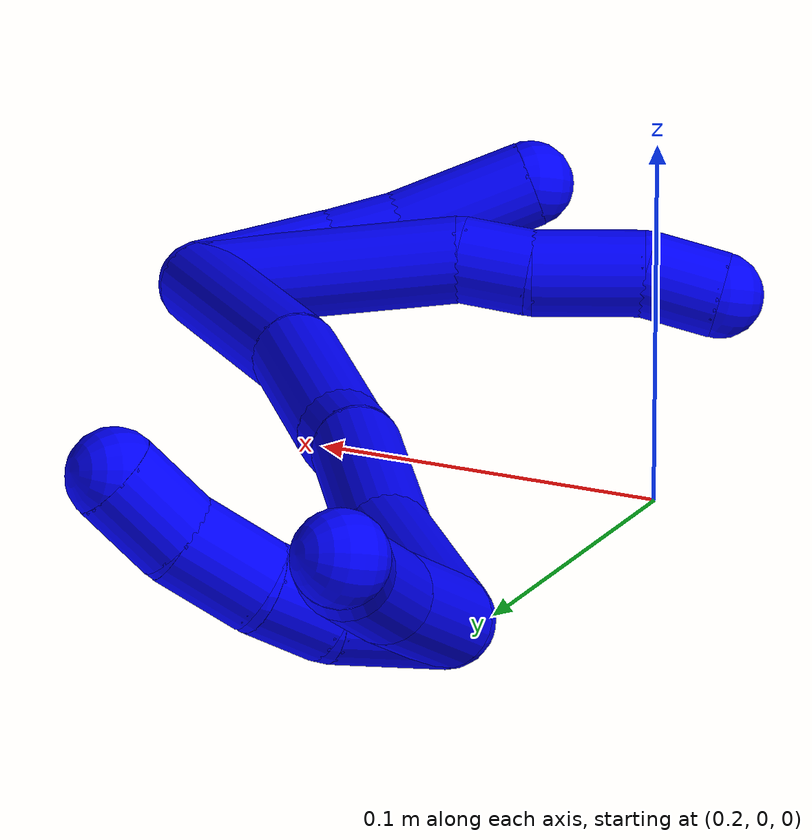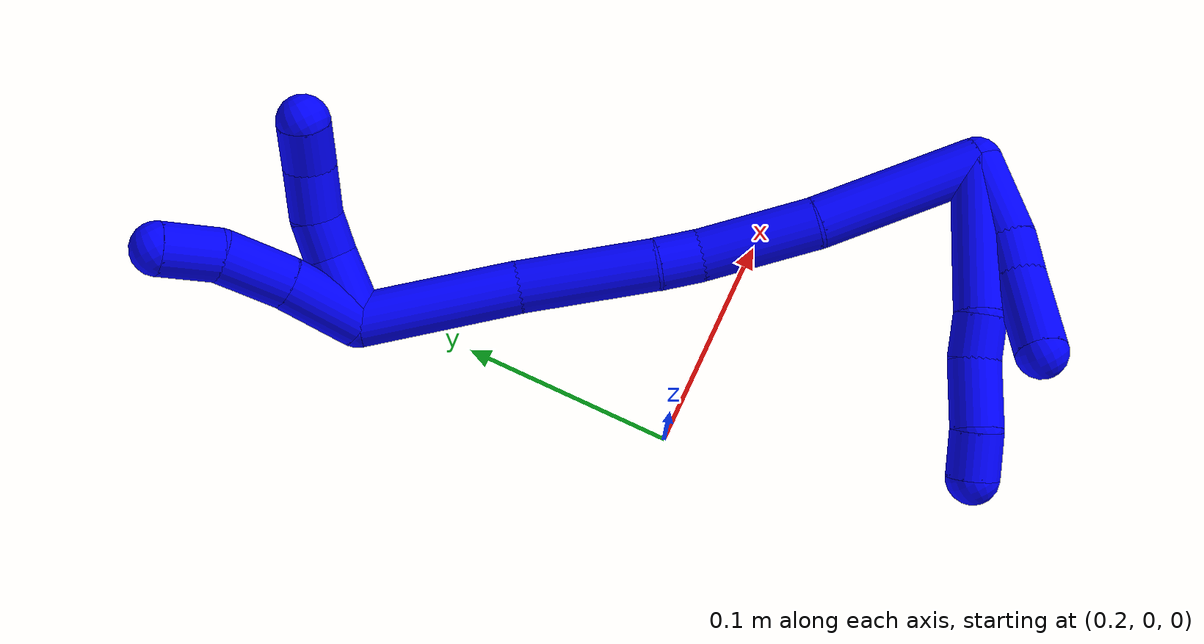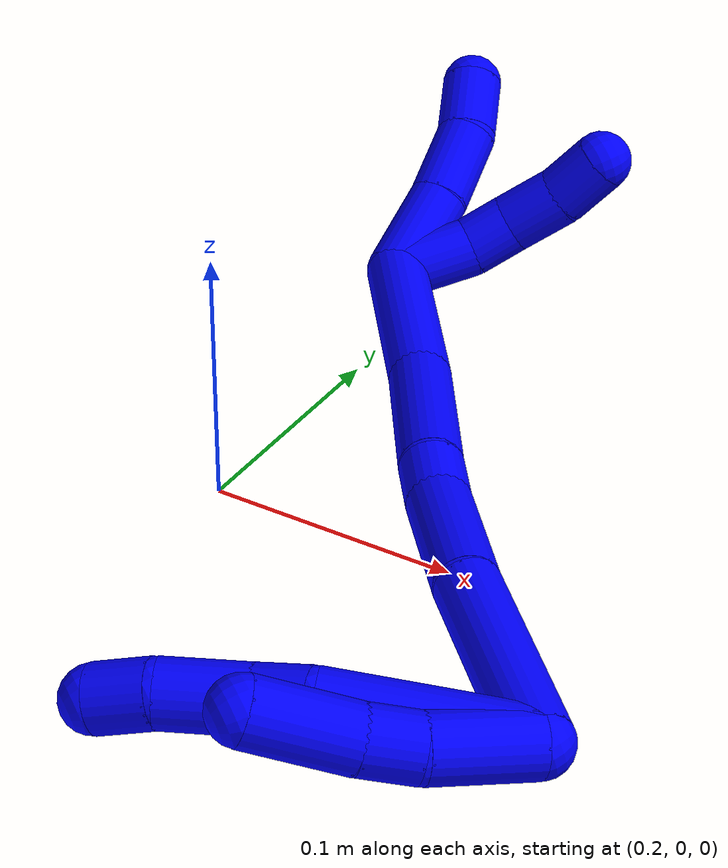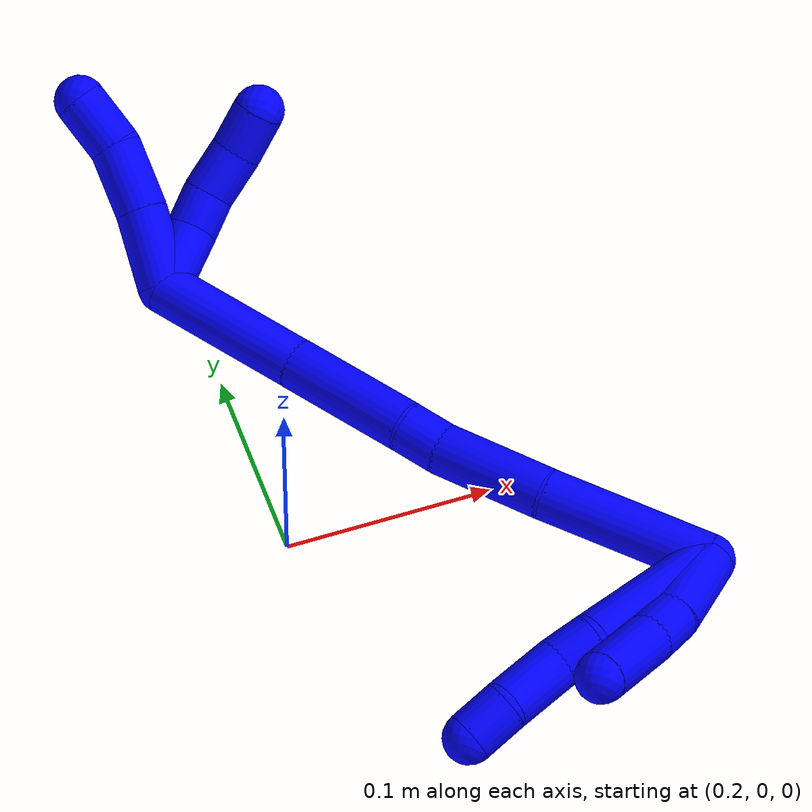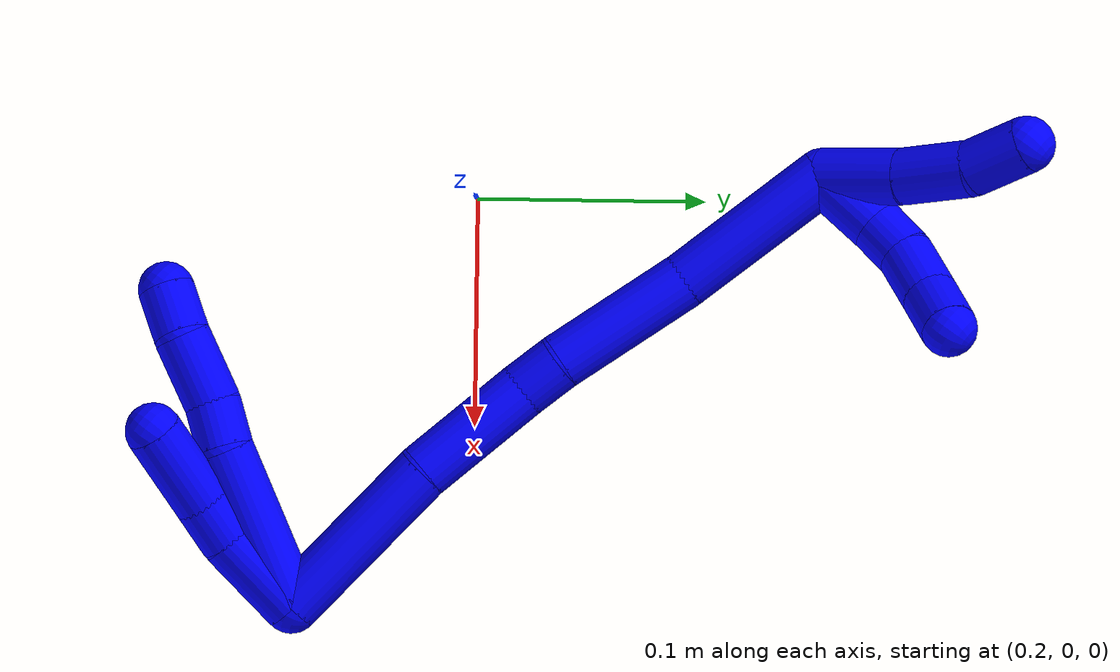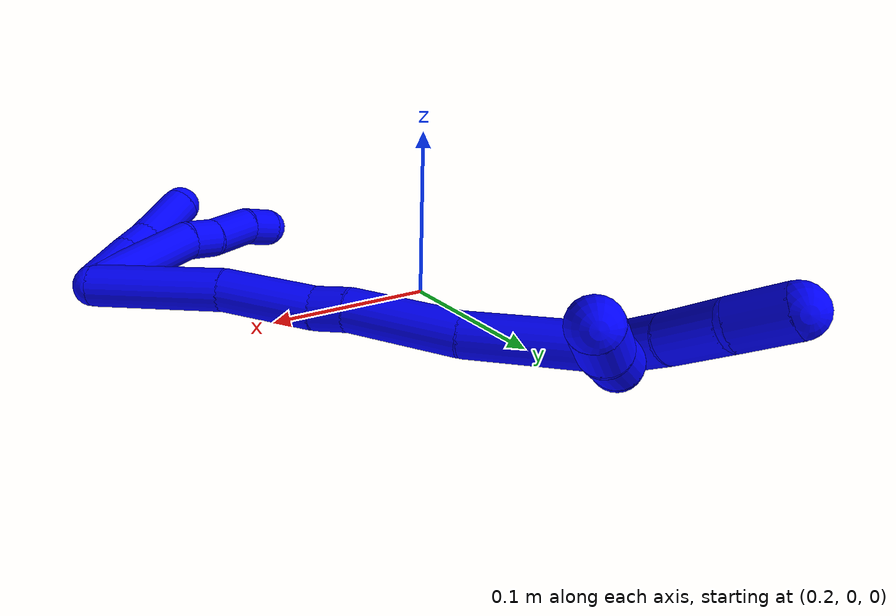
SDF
<sdf version="1.7">
 <world name="default">
  <model name="1">
   <static>0</static>
   <link name="1">
    <collision name="collision-cylinder-e_1_2_8">
     <pose>-0.010073 0.019786 -0.029981 -2.55824 -0.273391 0.859212</pose>
     <geometry><cylinder><radius>0.0125</radius><length>0.074614</length></cylinder></geometry>
     <surface>
      <friction><ode><mu>1.16</mu><mu2>1.16</mu2><slip1>0</slip1><slip2>0</slip2></ode></friction>
      <contact><ode><kp>1e+06</kp><kd>1</kd><max_vel>0</max_vel><min_depth>0.001</min_depth></ode></contact>
     </surface>
    </collision>
    <visual name="visual-cylinder-e_1_2_8">
     <pose>-0.010073 0.019786 -0.029981 -2.55824 -0.273391 0.859212</pose>
     <geometry><cylinder><radius>0.0125</radius><length>0.074614</length></cylinder></geometry>
     <material><ambient>0 0 1 1</ambient></material>
    </visual>
    <collision name="collision-cylinder-e_2_8_9">
     <pose>-0.020118 0.045854 -0.068234 -2.49218 0.002673 -0.00794</pose>
     <geometry><cylinder><radius>0.0125</radius><length>0.020774</length></cylinder></geometry>
     <surface>
      <friction><ode><mu>1.16</mu><mu2>1.16</mu2><slip1>0</slip1><slip2>0</slip2></ode></friction>
      <contact><ode><kp>1e+06</kp><kd>1</kd><max_vel>0</max_vel><min_depth>0.001</min_depth></ode></contact>
     </surface>
    </collision>
    <visual name="visual-cylinder-e_2_8_9">
     <pose>-0.020118 0.045854 -0.068234 -2.49218 0.002673 -0.00794</pose>
     <geometry><cylinder><radius>0.0125</radius><length>0.020774</length></cylinder></geometry>
     <material><ambient>0 0 1 1</ambient></material>
    </visual>
    <collision name="collision-cylinder-e_3_9_10">
     <pose>-0.022739 0.060161 -0.090298 -2.61457 -0.164509 0.593134</pose>
     <geometry><cylinder><radius>0.0125</radius><length>0.032351</length></cylinder></geometry>
     <surface>
      <friction><ode><mu>1.16</mu><mu2>1.16</mu2><slip1>0</slip1><slip2>0</slip2></ode></friction>
      <contact><ode><kp>1e+06</kp><kd>1</kd><max_vel>0</max_vel><min_depth>0.001</min_depth></ode></contact>
     </surface>
    </collision>
    <visual name="visual-cylinder-e_3_9_10">
     <pose>-0.022739 0.060161 -0.090298 -2.61457 -0.164509 0.593134</pose>
     <geometry><cylinder><radius>0.0125</radius><length>0.032351</length></cylinder></geometry>
     <material><ambient>0 0 1 1</ambient></material>
    </visual>
    <collision name="collision-cylinder-e_4_10_6">
     <pose>-0.02421 0.074092 -0.113451 -2.57877 0.10604 -0.363119</pose>
     <geometry><cylinder><radius>0.0125</radius><length>0.022262</length></cylinder></geometry>
     <surface>
      <friction><ode><mu>1.16</mu><mu2>1.16</mu2><slip1>0</slip1><slip2>0</slip2></ode></friction>
      <contact><ode><kp>1e+06</kp><kd>1</kd><max_vel>0</max_vel><min_depth>0.001</min_depth></ode></contact>
     </surface>
    </collision>
    <visual name="visual-cylinder-e_4_10_6">
     <pose>-0.02421 0.074092 -0.113451 -2.57877 0.10604 -0.363119</pose>
     <geometry><cylinder><radius>0.0125</radius><length>0.022262</length></cylinder></geometry>
     <material><ambient>0 0 1 1</ambient></material>
    </visual>
    <collision name="collision-cylinder-e_1_2_11">
     <pose>-0.00692 0.003866 -0.018296 -2.93335 -0.354446 2.08524</pose>
     <geometry><cylinder><radius>0.0125</radius><length>0.039878</length></cylinder></geometry>
     <surface>
      <friction><ode><mu>1.16</mu><mu2>1.16</mu2><slip1>0</slip1><slip2>0</slip2></ode></friction>
      <contact><ode><kp>1e+06</kp><kd>1</kd><max_vel>0</max_vel><min_depth>0.001</min_depth></ode></contact>
     </surface>
    </collision>
    <visual name="visual-cylinder-e_1_2_11">
     <pose>-0.00692 0.003866 -0.018296 -2.93335 -0.354446 2.08524</pose>
     <geometry><cylinder><radius>0.0125</radius><length>0.039878</length></cylinder></geometry>
     <material><ambient>0 0 1 1</ambient></material>
    </visual>
    <collision name="collision-cylinder-e_2_11_12">
     <pose>-0.018074 0.011462 -0.045232 -2.73412 -0.422677 1.60849</pose>
     <geometry><cylinder><radius>0.0125</radius><length>0.02064</length></cylinder></geometry>
     <surface>
      <friction><ode><mu>1.16</mu><mu2>1.16</mu2><slip1>0</slip1><slip2>0</slip2></ode></friction>
      <contact><ode><kp>1e+06</kp><kd>1</kd><max_vel>0</max_vel><min_depth>0.001</min_depth></ode></contact>
     </surface>
    </collision>
    <visual name="visual-cylinder-e_2_11_12">
     <pose>-0.018074 0.011462 -0.045232 -2.73412 -0.422677 1.60849</pose>
     <geometry><cylinder><radius>0.0125</radius><length>0.02064</length></cylinder></geometry>
     <material><ambient>0 0 1 1</ambient></material>
    </visual>
    <collision name="collision-cylinder-e_3_12_5">
     <pose>-0.032364 0.022336 -0.069285 -2.70748 -0.534554 1.7856</pose>
     <geometry><cylinder><radius>0.0125</radius><length>0.039482</length></cylinder></geometry>
     <surface>
      <friction><ode><mu>1.16</mu><mu2>1.16</mu2><slip1>0</slip1><slip2>0</slip2></ode></friction>
      <contact><ode><kp>1e+06</kp><kd>1</kd><max_vel>0</max_vel><min_depth>0.001</min_depth></ode></contact>
     </surface>
    </collision>
    <visual name="visual-cylinder-e_3_12_5">
     <pose>-0.032364 0.022336 -0.069285 -2.70748 -0.534554 1.7856</pose>
     <geometry><cylinder><radius>0.0125</radius><length>0.039482</length></cylinder></geometry>
     <material><ambient>0 0 1 1</ambient></material>
    </visual>
    <collision name="collision-cylinder-e_1_2_13">
     <pose>0.002417 0.040566 0.005952 -1.42512 0.05889 -0.050884</pose>
     <geometry><cylinder><radius>0.0125</radius><length>0.082144</length></cylinder></geometry>
     <surface>
      <friction><ode><mu>1.16</mu><mu2>1.16</mu2><slip1>0</slip1><slip2>0</slip2></ode></friction>
      <contact><ode><kp>1e+06</kp><kd>1</kd><max_vel>0</max_vel><min_depth>0.001</min_depth></ode></contact>
     </surface>
    </collision>
    <visual name="visual-cylinder-e_1_2_13">
     <pose>0.002417 0.040566 0.005952 -1.42512 0.05889 -0.050884</pose>
     <geometry><cylinder><radius>0.0125</radius><length>0.082144</length></cylinder></geometry>
     <material><ambient>0 0 1 1</ambient></material>
    </visual>
    <collision name="collision-cylinder-e_2_13_14">
     <pose>0.010316 0.108002 0.018123 -1.34334 0.1962 -0.156159</pose>
     <geometry><cylinder><radius>0.0125</radius><length>0.056239</length></cylinder></geometry>
     <surface>
      <friction><ode><mu>1.16</mu><mu2>1.16</mu2><slip1>0</slip1><slip2>0</slip2></ode></friction>
      <contact><ode><kp>1e+06</kp><kd>1</kd><max_vel>0</max_vel><min_depth>0.001</min_depth></ode></contact>
     </surface>
    </collision>
    <visual name="visual-cylinder-e_2_13_14">
     <pose>0.010316 0.108002 0.018123 -1.34334 0.1962 -0.156159</pose>
     <geometry><cylinder><radius>0.0125</radius><length>0.056239</length></cylinder></geometry>
     <material><ambient>0 0 1 1</ambient></material>
    </visual>
    <collision name="collision-cylinder-e_3_14_15">
     <pose>0.016151 0.144793 0.027392 -1.27255 0.033953 -0.025084</pose>
     <geometry><cylinder><radius>0.0125</radius><length>0.02077</length></cylinder></geometry>
     <surface>
      <friction><ode><mu>1.16</mu><mu2>1.16</mu2><slip1>0</slip1><slip2>0</slip2></ode></friction>
      <contact><ode><kp>1e+06</kp><kd>1</kd><max_vel>0</max_vel><min_depth>0.001</min_depth></ode></contact>
     </surface>
    </collision>
    <visual name="visual-cylinder-e_3_14_15">
     <pose>0.016151 0.144793 0.027392 -1.27255 0.033953 -0.025084</pose>
     <geometry><cylinder><radius>0.0125</radius><length>0.02077</length></cylinder></geometry>
     <material><ambient>0 0 1 1</ambient></material>
    </visual>
    <collision name="collision-cylinder-e_4_15_16">
     <pose>0.022626 0.184789 0.040998 -1.23323 0.189773 -0.134714</pose>
     <geometry><cylinder><radius>0.0125</radius><length>0.064912</length></cylinder></geometry>
     <surface>
      <friction><ode><mu>1.16</mu><mu2>1.16</mu2><slip1>0</slip1><slip2>0</slip2></ode></friction>
      <contact><ode><kp>1e+06</kp><kd>1</kd><max_vel>0</max_vel><min_depth>0.001</min_depth></ode></contact>
     </surface>
    </collision>
    <visual name="visual-cylinder-e_4_15_16">
     <pose>0.022626 0.184789 0.040998 -1.23323 0.189773 -0.134714</pose>
     <geometry><cylinder><radius>0.0125</radius><length>0.064912</length></cylinder></geometry>
     <material><ambient>0 0 1 1</ambient></material>
    </visual>
    <collision name="collision-cylinder-e_5_16_1">
     <pose>0.031528 0.251099 0.062543 -1.27633 0.073289 -0.054369</pose>
     <geometry><cylinder><radius>0.0125</radius><length>0.075935</length></cylinder></geometry>
     <surface>
      <friction><ode><mu>1.16</mu><mu2>1.16</mu2><slip1>0</slip1><slip2>0</slip2></ode></friction>
      <contact><ode><kp>1e+06</kp><kd>1</kd><max_vel>0</max_vel><min_depth>0.001</min_depth></ode></contact>
     </surface>
    </collision>
    <visual name="visual-cylinder-e_5_16_1">
     <pose>0.031528 0.251099 0.062543 -1.27633 0.073289 -0.054369</pose>
     <geometry><cylinder><radius>0.0125</radius><length>0.075935</length></cylinder></geometry>
     <material><ambient>0 0 1 1</ambient></material>
    </visual>
    <collision name="collision-cylinder-e_1_1_17">
     <pose>0.02956 0.297584 0.089021 -0.58458 -0.250309 0.07568</pose>
     <geometry><cylinder><radius>0.0125</radius><length>0.038339</length></cylinder></geometry>
     <surface>
      <friction><ode><mu>1.16</mu><mu2>1.16</mu2><slip1>0</slip1><slip2>0</slip2></ode></friction>
      <contact><ode><kp>1e+06</kp><kd>1</kd><max_vel>0</max_vel><min_depth>0.001</min_depth></ode></contact>
     </surface>
    </collision>
    <visual name="visual-cylinder-e_1_1_17">
     <pose>0.02956 0.297584 0.089021 -0.58458 -0.250309 0.07568</pose>
     <geometry><cylinder><radius>0.0125</radius><length>0.038339</length></cylinder></geometry>
     <material><ambient>0 0 1 1</ambient></material>
    </visual>
    <collision name="collision-cylinder-e_2_17_18">
     <pose>0.02007 0.318172 0.11695 -0.693408 -0.285091 0.103613</pose>
     <geometry><cylinder><radius>0.0125</radius><length>0.033715</length></cylinder></geometry>
     <surface>
      <friction><ode><mu>1.16</mu><mu2>1.16</mu2><slip1>0</slip1><slip2>0</slip2></ode></friction>
      <contact><ode><kp>1e+06</kp><kd>1</kd><max_vel>0</max_vel><min_depth>0.001</min_depth></ode></contact>
     </surface>
    </collision>
    <visual name="visual-cylinder-e_2_17_18">
     <pose>0.02007 0.318172 0.11695 -0.693408 -0.285091 0.103613</pose>
     <geometry><cylinder><radius>0.0125</radius><length>0.033715</length></cylinder></geometry>
     <material><ambient>0 0 1 1</ambient></material>
    </visual>
    <collision name="collision-cylinder-e_3_18_4">
     <pose>0.011595 0.339671 0.136926 -0.976913 -0.270517 0.144386</pose>
     <geometry><cylinder><radius>0.0125</radius><length>0.027946</length></cylinder></geometry>
     <surface>
      <friction><ode><mu>1.16</mu><mu2>1.16</mu2><slip1>0</slip1><slip2>0</slip2></ode></friction>
      <contact><ode><kp>1e+06</kp><kd>1</kd><max_vel>0</max_vel><min_depth>0.001</min_depth></ode></contact>
     </surface>
    </collision>
    <visual name="visual-cylinder-e_3_18_4">
     <pose>0.011595 0.339671 0.136926 -0.976913 -0.270517 0.144386</pose>
     <geometry><cylinder><radius>0.0125</radius><length>0.027946</length></cylinder></geometry>
     <material><ambient>0 0 1 1</ambient></material>
    </visual>
    <collision name="collision-cylinder-e_1_1_19">
     <pose>0.034986 0.285618 0.089674 0.105976 0.041715 0.002213</pose>
     <geometry><cylinder><radius>0.0125</radius><length>0.032492</length></cylinder></geometry>
     <surface>
      <friction><ode><mu>1.16</mu><mu2>1.16</mu2><slip1>0</slip1><slip2>0</slip2></ode></friction>
      <contact><ode><kp>1e+06</kp><kd>1</kd><max_vel>0</max_vel><min_depth>0.001</min_depth></ode></contact>
     </surface>
    </collision>
    <visual name="visual-cylinder-e_1_1_19">
     <pose>0.034986 0.285618 0.089674 0.105976 0.041715 0.002213</pose>
     <geometry><cylinder><radius>0.0125</radius><length>0.032492</length></cylinder></geometry>
     <material><ambient>0 0 1 1</ambient></material>
    </visual>
    <collision name="collision-cylinder-e_2_19_20">
     <pose>0.032965 0.282478 0.11534 0.148248 -0.273196 -0.020414</pose>
     <geometry><cylinder><radius>0.0125</radius><length>0.020003</length></cylinder></geometry>
     <surface>
      <friction><ode><mu>1.16</mu><mu2>1.16</mu2><slip1>0</slip1><slip2>0</slip2></ode></friction>
      <contact><ode><kp>1e+06</kp><kd>1</kd><max_vel>0</max_vel><min_depth>0.001</min_depth></ode></contact>
     </surface>
    </collision>
    <visual name="visual-cylinder-e_2_19_20">
     <pose>0.032965 0.282478 0.11534 0.148248 -0.273196 -0.020414</pose>
     <geometry><cylinder><radius>0.0125</radius><length>0.020003</length></cylinder></geometry>
     <material><ambient>0 0 1 1</ambient></material>
    </visual>
    <collision name="collision-cylinder-e_3_20_21">
     <pose>0.025471 0.277171 0.135543 0.348934 -0.399321 -0.071304</pose>
     <geometry><cylinder><radius>0.0125</radius><length>0.024666</length></cylinder></geometry>
     <surface>
      <friction><ode><mu>1.16</mu><mu2>1.16</mu2><slip1>0</slip1><slip2>0</slip2></ode></friction>
      <contact><ode><kp>1e+06</kp><kd>1</kd><max_vel>0</max_vel><min_depth>0.001</min_depth></ode></contact>
     </surface>
    </collision>
    <visual name="visual-cylinder-e_3_20_21">
     <pose>0.025471 0.277171 0.135543 0.348934 -0.399321 -0.071304</pose>
     <geometry><cylinder><radius>0.0125</radius><length>0.024666</length></cylinder></geometry>
     <material><ambient>0 0 1 1</ambient></material>
    </visual>
    <collision name="collision-cylinder-e_4_21_3">
     <pose>0.014107 0.270295 0.15507 0.325977 -0.61287 -0.103969</pose>
     <geometry><cylinder><radius>0.0125</radius><length>0.022839</length></cylinder></geometry>
     <surface>
      <friction><ode><mu>1.16</mu><mu2>1.16</mu2><slip1>0</slip1><slip2>0</slip2></ode></friction>
      <contact><ode><kp>1e+06</kp><kd>1</kd><max_vel>0</max_vel><min_depth>0.001</min_depth></ode></contact>
     </surface>
    </collision>
    <visual name="visual-cylinder-e_4_21_3">
     <pose>0.014107 0.270295 0.15507 0.325977 -0.61287 -0.103969</pose>
     <geometry><cylinder><radius>0.0125</radius><length>0.022839</length></cylinder></geometry>
     <material><ambient>0 0 1 1</ambient></material>
    </visual>
    <collision name="collision-sphere-3">
     <pose>0.007539 0.267303 0.163919 0 -0 0</pose>
     <geometry><sphere><radius>0.0125</radius></sphere></geometry>
     <surface>
      <friction><ode><mu>1.16</mu><mu2>1.16</mu2><slip1>0</slip1><slip2>0</slip2></ode></friction>
      <contact><ode><kp>1e+06</kp><kd>1</kd><max_vel>0</max_vel><min_depth>0.001</min_depth></ode></contact>
     </surface>
    </collision>
    <visual name="visual-sphere-3">
     <pose>0.007539 0.267303 0.163919 0 -0 0</pose>
     <geometry><sphere><radius>0.0125</radius></sphere></geometry>
     <material><ambient>0 0 1 1</ambient></material>
    </visual>
    <collision name="collision-sphere-21">
     <pose>0.020676 0.273286 0.146221 0 -0 0</pose>
     <geometry><sphere><radius>0.0125</radius></sphere></geometry>
     <surface>
      <friction><ode><mu>1.16</mu><mu2>1.16</mu2><slip1>0</slip1><slip2>0</slip2></ode></friction>
      <contact><ode><kp>1e+06</kp><kd>1</kd><max_vel>0</max_vel><min_depth>0.001</min_depth></ode></contact>
     </surface>
    </collision>
    <visual name="visual-sphere-21">
     <pose>0.020676 0.273286 0.146221 0 -0 0</pose>
     <geometry><sphere><radius>0.0125</radius></sphere></geometry>
     <material><ambient>0 0 1 1</ambient></material>
    </visual>
    <collision name="collision-sphere-20">
     <pose>0.030266 0.281056 0.124865 0 -0 0</pose>
     <geometry><sphere><radius>0.0125</radius></sphere></geometry>
     <surface>
      <friction><ode><mu>1.16</mu><mu2>1.16</mu2><slip1>0</slip1><slip2>0</slip2></ode></friction>
      <contact><ode><kp>1e+06</kp><kd>1</kd><max_vel>0</max_vel><min_depth>0.001</min_depth></ode></contact>
     </surface>
    </collision>
    <visual name="visual-sphere-20">
     <pose>0.030266 0.281056 0.124865 0 -0 0</pose>
     <geometry><sphere><radius>0.0125</radius></sphere></geometry>
     <material><ambient>0 0 1 1</ambient></material>
    </visual>
    <collision name="collision-sphere-19">
     <pose>0.035663 0.283901 0.105814 0 -0 0</pose>
     <geometry><sphere><radius>0.0125</radius></sphere></geometry>
     <surface>
      <friction><ode><mu>1.16</mu><mu2>1.16</mu2><slip1>0</slip1><slip2>0</slip2></ode></friction>
      <contact><ode><kp>1e+06</kp><kd>1</kd><max_vel>0</max_vel><min_depth>0.001</min_depth></ode></contact>
     </surface>
    </collision>
    <visual name="visual-sphere-19">
     <pose>0.035663 0.283901 0.105814 0 -0 0</pose>
     <geometry><sphere><radius>0.0125</radius></sphere></geometry>
     <material><ambient>0 0 1 1</ambient></material>
    </visual>
    <collision name="collision-sphere-11">
     <pose>-0.013841 0.007732 -0.036591 0 -0 0</pose>
     <geometry><sphere><radius>0.0125</radius></sphere></geometry>
     <surface>
      <friction><ode><mu>1.16</mu><mu2>1.16</mu2><slip1>0</slip1><slip2>0</slip2></ode></friction>
      <contact><ode><kp>1e+06</kp><kd>1</kd><max_vel>0</max_vel><min_depth>0.001</min_depth></ode></contact>
     </surface>
    </collision>
    <visual name="visual-sphere-11">
     <pose>-0.013841 0.007732 -0.036591 0 -0 0</pose>
     <geometry><sphere><radius>0.0125</radius></sphere></geometry>
     <material><ambient>0 0 1 1</ambient></material>
    </visual>
    <collision name="collision-sphere-6">
     <pose>-0.023032 0.079998 -0.122812 0 -0 0</pose>
     <geometry><sphere><radius>0.0125</radius></sphere></geometry>
     <surface>
      <friction><ode><mu>1.16</mu><mu2>1.16</mu2><slip1>0</slip1><slip2>0</slip2></ode></friction>
      <contact><ode><kp>1e+06</kp><kd>1</kd><max_vel>0</max_vel><min_depth>0.001</min_depth></ode></contact>
     </surface>
    </collision>
    <visual name="visual-sphere-6">
     <pose>-0.023032 0.079998 -0.122812 0 -0 0</pose>
     <geometry><sphere><radius>0.0125</radius></sphere></geometry>
     <material><ambient>0 0 1 1</ambient></material>
    </visual>
    <collision name="collision-sphere-10">
     <pose>-0.025388 0.068186 -0.10409 0 -0 0</pose>
     <geometry><sphere><radius>0.0125</radius></sphere></geometry>
     <surface>
      <friction><ode><mu>1.16</mu><mu2>1.16</mu2><slip1>0</slip1><slip2>0</slip2></ode></friction>
      <contact><ode><kp>1e+06</kp><kd>1</kd><max_vel>0</max_vel><min_depth>0.001</min_depth></ode></contact>
     </surface>
    </collision>
    <visual name="visual-sphere-10">
     <pose>-0.025388 0.068186 -0.10409 0 -0 0</pose>
     <geometry><sphere><radius>0.0125</radius></sphere></geometry>
     <material><ambient>0 0 1 1</ambient></material>
    </visual>
    <collision name="collision-sphere-9">
     <pose>-0.02009 0.052135 -0.076506 0 -0 0</pose>
     <geometry><sphere><radius>0.0125</radius></sphere></geometry>
     <surface>
      <friction><ode><mu>1.16</mu><mu2>1.16</mu2><slip1>0</slip1><slip2>0</slip2></ode></friction>
      <contact><ode><kp>1e+06</kp><kd>1</kd><max_vel>0</max_vel><min_depth>0.001</min_depth></ode></contact>
     </surface>
    </collision>
    <visual name="visual-sphere-9">
     <pose>-0.02009 0.052135 -0.076506 0 -0 0</pose>
     <geometry><sphere><radius>0.0125</radius></sphere></geometry>
     <material><ambient>0 0 1 1</ambient></material>
    </visual>
    <collision name="collision-sphere-2">
     <geometry><sphere><radius>0.0125</radius></sphere></geometry>
     <surface>
      <friction><ode><mu>1.16</mu><mu2>1.16</mu2><slip1>0</slip1><slip2>0</slip2></ode></friction>
      <contact><ode><kp>1e+06</kp><kd>1</kd><max_vel>0</max_vel><min_depth>0.001</min_depth></ode></contact>
     </surface>
    </collision>
    <visual name="visual-sphere-2">
     <geometry><sphere><radius>0.0125</radius></sphere></geometry>
     <material><ambient>0 0 1 1</ambient></material>
    </visual>
    <collision name="collision-sphere-8">
     <pose>-0.020145 0.039573 -0.059961 0 -0 0</pose>
     <geometry><sphere><radius>0.0125</radius></sphere></geometry>
     <surface>
      <friction><ode><mu>1.16</mu><mu2>1.16</mu2><slip1>0</slip1><slip2>0</slip2></ode></friction>
      <contact><ode><kp>1e+06</kp><kd>1</kd><max_vel>0</max_vel><min_depth>0.001</min_depth></ode></contact>
     </surface>
    </collision>
    <visual name="visual-sphere-8">
     <pose>-0.020145 0.039573 -0.059961 0 -0 0</pose>
     <geometry><sphere><radius>0.0125</radius></sphere></geometry>
     <material><ambient>0 0 1 1</ambient></material>
    </visual>
    <collision name="collision-sphere-12">
     <pose>-0.022307 0.015192 -0.053874 0 -0 0</pose>
     <geometry><sphere><radius>0.0125</radius></sphere></geometry>
     <surface>
      <friction><ode><mu>1.16</mu><mu2>1.16</mu2><slip1>0</slip1><slip2>0</slip2></ode></friction>
      <contact><ode><kp>1e+06</kp><kd>1</kd><max_vel>0</max_vel><min_depth>0.001</min_depth></ode></contact>
     </surface>
    </collision>
    <visual name="visual-sphere-12">
     <pose>-0.022307 0.015192 -0.053874 0 -0 0</pose>
     <geometry><sphere><radius>0.0125</radius></sphere></geometry>
     <material><ambient>0 0 1 1</ambient></material>
    </visual>
    <collision name="collision-sphere-5">
     <pose>-0.042421 0.029481 -0.084696 0 -0 0</pose>
     <geometry><sphere><radius>0.0125</radius></sphere></geometry>
     <surface>
      <friction><ode><mu>1.16</mu><mu2>1.16</mu2><slip1>0</slip1><slip2>0</slip2></ode></friction>
      <contact><ode><kp>1e+06</kp><kd>1</kd><max_vel>0</max_vel><min_depth>0.001</min_depth></ode></contact>
     </surface>
    </collision>
    <visual name="visual-sphere-5">
     <pose>-0.042421 0.029481 -0.084696 0 -0 0</pose>
     <geometry><sphere><radius>0.0125</radius></sphere></geometry>
     <material><ambient>0 0 1 1</ambient></material>
    </visual>
    <collision name="collision-sphere-13">
     <pose>0.004835 0.081133 0.011903 0 -0 0</pose>
     <geometry><sphere><radius>0.0125</radius></sphere></geometry>
     <surface>
      <friction><ode><mu>1.16</mu><mu2>1.16</mu2><slip1>0</slip1><slip2>0</slip2></ode></friction>
      <contact><ode><kp>1e+06</kp><kd>1</kd><max_vel>0</max_vel><min_depth>0.001</min_depth></ode></contact>
     </surface>
    </collision>
    <visual name="visual-sphere-13">
     <pose>0.004835 0.081133 0.011903 0 -0 0</pose>
     <geometry><sphere><radius>0.0125</radius></sphere></geometry>
     <material><ambient>0 0 1 1</ambient></material>
    </visual>
    <collision name="collision-sphere-14">
     <pose>0.015798 0.134872 0.024342 0 -0 0</pose>
     <geometry><sphere><radius>0.0125</radius></sphere></geometry>
     <surface>
      <friction><ode><mu>1.16</mu><mu2>1.16</mu2><slip1>0</slip1><slip2>0</slip2></ode></friction>
      <contact><ode><kp>1e+06</kp><kd>1</kd><max_vel>0</max_vel><min_depth>0.001</min_depth></ode></contact>
     </surface>
    </collision>
    <visual name="visual-sphere-14">
     <pose>0.015798 0.134872 0.024342 0 -0 0</pose>
     <geometry><sphere><radius>0.0125</radius></sphere></geometry>
     <material><ambient>0 0 1 1</ambient></material>
    </visual>
    <collision name="collision-sphere-15">
     <pose>0.016503 0.154714 0.030442 0 -0 0</pose>
     <geometry><sphere><radius>0.0125</radius></sphere></geometry>
     <surface>
      <friction><ode><mu>1.16</mu><mu2>1.16</mu2><slip1>0</slip1><slip2>0</slip2></ode></friction>
      <contact><ode><kp>1e+06</kp><kd>1</kd><max_vel>0</max_vel><min_depth>0.001</min_depth></ode></contact>
     </surface>
    </collision>
    <visual name="visual-sphere-15">
     <pose>0.016503 0.154714 0.030442 0 -0 0</pose>
     <geometry><sphere><radius>0.0125</radius></sphere></geometry>
     <material><ambient>0 0 1 1</ambient></material>
    </visual>
    <collision name="collision-sphere-16">
     <pose>0.028748 0.214863 0.051554 0 -0 0</pose>
     <geometry><sphere><radius>0.0125</radius></sphere></geometry>
     <surface>
      <friction><ode><mu>1.16</mu><mu2>1.16</mu2><slip1>0</slip1><slip2>0</slip2></ode></friction>
      <contact><ode><kp>1e+06</kp><kd>1</kd><max_vel>0</max_vel><min_depth>0.001</min_depth></ode></contact>
     </surface>
    </collision>
    <visual name="visual-sphere-16">
     <pose>0.028748 0.214863 0.051554 0 -0 0</pose>
     <geometry><sphere><radius>0.0125</radius></sphere></geometry>
     <material><ambient>0 0 1 1</ambient></material>
    </visual>
    <collision name="collision-sphere-1">
     <pose>0.034308 0.287335 0.073533 0 -0 0</pose>
     <geometry><sphere><radius>0.0125</radius></sphere></geometry>
     <surface>
      <friction><ode><mu>1.16</mu><mu2>1.16</mu2><slip1>0</slip1><slip2>0</slip2></ode></friction>
      <contact><ode><kp>1e+06</kp><kd>1</kd><max_vel>0</max_vel><min_depth>0.001</min_depth></ode></contact>
     </surface>
    </collision>
    <visual name="visual-sphere-1">
     <pose>0.034308 0.287335 0.073533 0 -0 0</pose>
     <geometry><sphere><radius>0.0125</radius></sphere></geometry>
     <material><ambient>0 0 1 1</ambient></material>
    </visual>
    <collision name="collision-sphere-18">
     <pose>0.015329 0.328512 0.129392 0 -0 0</pose>
     <geometry><sphere><radius>0.0125</radius></sphere></geometry>
     <surface>
      <friction><ode><mu>1.16</mu><mu2>1.16</mu2><slip1>0</slip1><slip2>0</slip2></ode></friction>
      <contact><ode><kp>1e+06</kp><kd>1</kd><max_vel>0</max_vel><min_depth>0.001</min_depth></ode></contact>
     </surface>
    </collision>
    <visual name="visual-sphere-18">
     <pose>0.015329 0.328512 0.129392 0 -0 0</pose>
     <geometry><sphere><radius>0.0125</radius></sphere></geometry>
     <material><ambient>0 0 1 1</ambient></material>
    </visual>
    <collision name="collision-sphere-17">
     <pose>0.024811 0.307833 0.104509 0 -0 0</pose>
     <geometry><sphere><radius>0.0125</radius></sphere></geometry>
     <surface>
      <friction><ode><mu>1.16</mu><mu2>1.16</mu2><slip1>0</slip1><slip2>0</slip2></ode></friction>
      <contact><ode><kp>1e+06</kp><kd>1</kd><max_vel>0</max_vel><min_depth>0.001</min_depth></ode></contact>
     </surface>
    </collision>
    <visual name="visual-sphere-17">
     <pose>0.024811 0.307833 0.104509 0 -0 0</pose>
     <geometry><sphere><radius>0.0125</radius></sphere></geometry>
     <material><ambient>0 0 1 1</ambient></material>
    </visual>
    <collision name="collision-sphere-4">
     <pose>0.007861 0.350831 0.144461 0 -0 0</pose>
     <geometry><sphere><radius>0.0125</radius></sphere></geometry>
     <surface>
      <friction><ode><mu>1.16</mu><mu2>1.16</mu2><slip1>0</slip1><slip2>0</slip2></ode></friction>
      <contact><ode><kp>1e+06</kp><kd>1</kd><max_vel>0</max_vel><min_depth>0.001</min_depth></ode></contact>
     </surface>
    </collision>
    <visual name="visual-sphere-4">
     <pose>0.007861 0.350831 0.144461 0 -0 0</pose>
     <geometry><sphere><radius>0.0125</radius></sphere></geometry>
     <material><ambient>0 0 1 1</ambient></material>
    </visual>
    <inertial>
     <pose>0.007316 0.147123 0.025701 0 -0 0</pose>
     <mass>0.75</mass>
     <inertia>
      <ixx>0.000204</ixx>
      <ixy>0</ixy>
      <ixz>0</ixz>
      <iyy>0.000104</iyy>
      <iyz>0</iyz>
      <izz>-0.000151</izz>
     </inertia>
    </inertial>
   </link>
   <pose>0.37905 -0.079014 0.012455 0.312514 1.32514 1.26553</pose>
  </model>
 </world>
</sdf>
